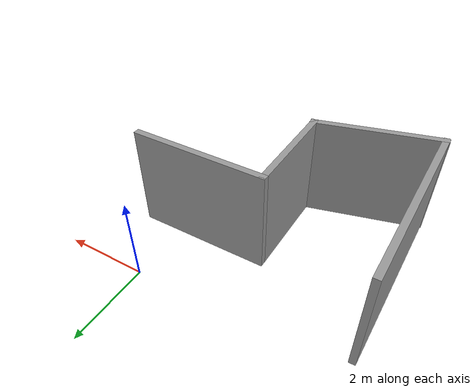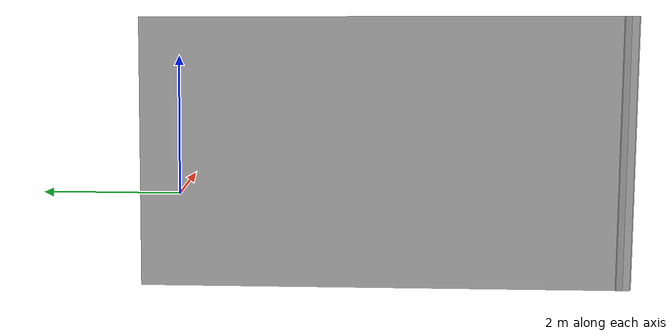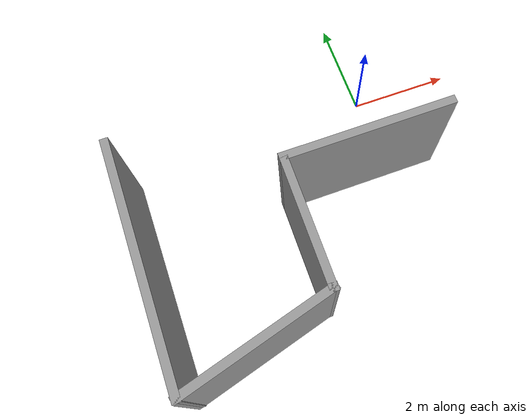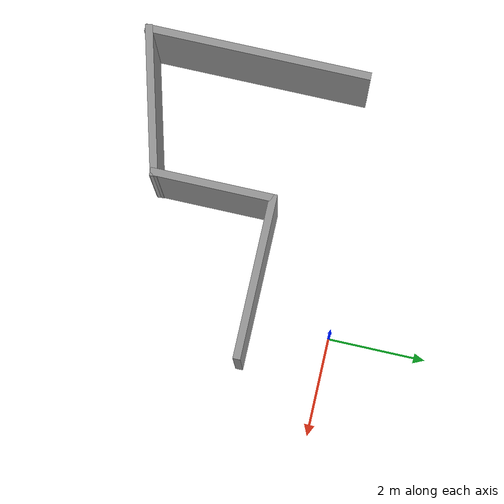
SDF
<?xml version='1.0'?>
<sdf version='1.7'>
  <model name='first_wall_gz'>
    <pose>-2.01988 -2.40492 0 0 -0 0</pose>
    <link name='Wall_0'>
      <collision name='Wall_0_Collision'>
        <geometry>
          <box>
            <size>3.25 0.15 2.5</size>
          </box>
        </geometry>
        <pose>0 0 1.25 0 -0 0</pose>
      </collision>
      <visual name='Wall_0_Visual'>
        <pose>0 0 1.25 0 -0 0</pose>
        <geometry>
          <box>
            <size>3.25 0.15 2.5</size>
          </box>
        </geometry>
        <material>
          <script>
            <uri>file://media/materials/scripts/gazebo.material</uri>
            <name>Gazebo/Grey</name>
          </script>
          <ambient>1 1 1 1</ambient>
        </material>
        <meta>
          <layer>0</layer>
        </meta>
      </visual>
      <pose>1.37988 0.774918 0 0 -0 3.14159</pose>
    </link>
    <link name='Wall_1'>
      <collision name='Wall_1_Collision'>
        <geometry>
          <box>
            <size>0.15 0.15 2.5</size>
          </box>
        </geometry>
        <pose>0 0 1.25 0 -0 0</pose>
      </collision>
      <visual name='Wall_1_Visual'>
        <pose>0 0 1.25 0 -0 0</pose>
        <geometry>
          <box>
            <size>0.15 0.15 2.5</size>
          </box>
        </geometry>
        <material>
          <script>
            <uri>file://media/materials/scripts/gazebo.material</uri>
            <name>Gazebo/Grey</name>
          </script>
          <ambient>1 1 1 1</ambient>
        </material>
        <meta>
          <layer>0</layer>
        </meta>
      </visual>
      <pose>-0.170118 0.774918 0 0 -0 0</pose>
    </link>
    <link name='Wall_2'>
      <collision name='Wall_2_Collision'>
        <geometry>
          <box>
            <size>2.5 0.15 2.5</size>
          </box>
        </geometry>
        <pose>0 0 1.25 0 -0 0</pose>
      </collision>
      <visual name='Wall_2_Visual'>
        <pose>0 0 1.25 0 -0 0</pose>
        <geometry>
          <box>
            <size>2.5 0.15 2.5</size>
          </box>
        </geometry>
        <material>
          <script>
            <uri>file://media/materials/scripts/gazebo.material</uri>
            <name>Gazebo/Grey</name>
          </script>
          <ambient>1 1 1 1</ambient>
        </material>
        <meta>
          <layer>0</layer>
        </meta>
      </visual>
      <pose>-0.170118 -0.400082 0 0 -0 -1.5708</pose>
    </link>
    <link name='Wall_3'>
      <collision name='Wall_3_Collision'>
        <geometry>
          <box>
            <size>0.16 0.15 2.5</size>
          </box>
        </geometry>
        <pose>0 0 1.25 0 -0 0</pose>
      </collision>
      <visual name='Wall_3_Visual'>
        <pose>0 0 1.25 0 -0 0</pose>
        <geometry>
          <box>
            <size>0.16 0.15 2.5</size>
          </box>
        </geometry>
        <material>
          <script>
            <uri>file://media/materials/scripts/gazebo.material</uri>
            <name>Gazebo/Grey</name>
          </script>
          <ambient>1 1 1 1</ambient>
        </material>
        <meta>
          <layer>0</layer>
        </meta>
      </visual>
      <pose>-0.165118 -1.57508 0 0 -0 0</pose>
    </link>
    <link name='Wall_4'>
      <collision name='Wall_4_Collision'>
        <geometry>
          <box>
            <size>3 0.15 2.5</size>
          </box>
        </geometry>
        <pose>0 0 1.25 0 -0 0</pose>
      </collision>
      <visual name='Wall_4_Visual'>
        <pose>0 0 1.25 0 -0 0</pose>
        <geometry>
          <box>
            <size>3 0.15 2.5</size>
          </box>
        </geometry>
        <material>
          <script>
            <uri>file://media/materials/scripts/gazebo.material</uri>
            <name>Gazebo/Grey</name>
          </script>
          <ambient>1 1 1 1</ambient>
        </material>
        <meta>
          <layer>0</layer>
        </meta>
      </visual>
      <pose>-1.53662 -1.94408 0 0 -0 -2.87968</pose>
    </link>
    <link name='Wall_5'>
      <collision name='Wall_5_Collision'>
        <geometry>
          <box>
            <size>4.5 0.15 2.5</size>
          </box>
        </geometry>
        <pose>0 0 1.25 0 -0 0</pose>
      </collision>
      <visual name='Wall_5_Visual'>
        <pose>0 0 1.25 0 -0 0</pose>
        <geometry>
          <box>
            <size>4.5 0.15 2.5</size>
          </box>
        </geometry>
        <material>
          <script>
            <uri>file://media/materials/scripts/gazebo.material</uri>
            <name>Gazebo/Grey</name>
          </script>
          <ambient>1 1 1 1</ambient>
        </material>
        <meta>
          <layer>0</layer>
        </meta>
      </visual>
      <pose>-2.91306 -0.137899 0 0 -0 1.57077</pose>
    </link>
    <static>1</static>
  </model>
</sdf>
